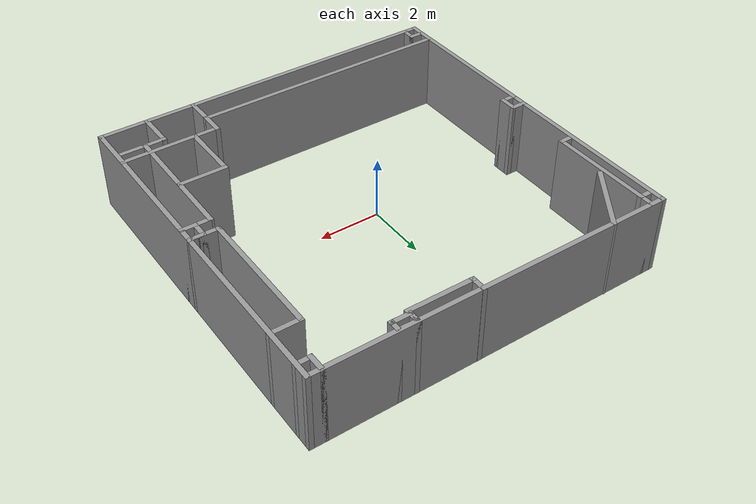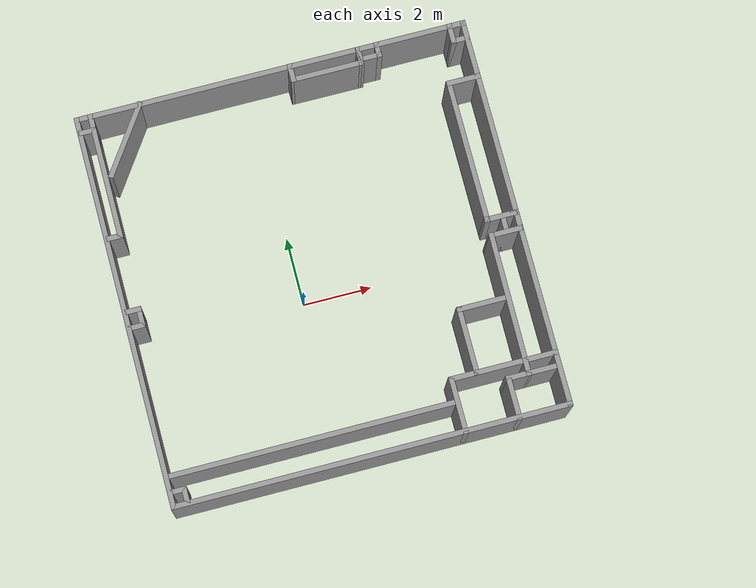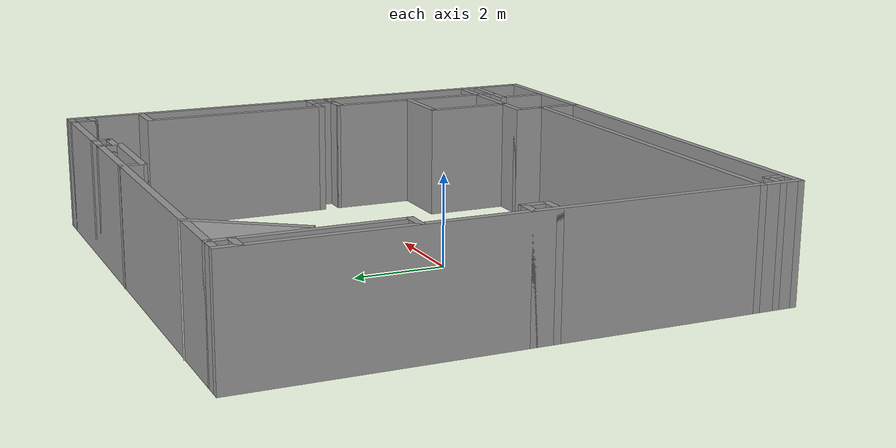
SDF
<?xml version='1.0'?>
<sdf version='1.6'>
  <model name='B205_except_table_'>
    <pose frame=''>0.68 0.689697 0 0 -0 0</pose>
    <link name='Wall_102'>
      <collision name='Wall_102_Collision'>
        <geometry>
          <box>
            <size>0.55 0.15 2.5</size>
          </box>
        </geometry>
        <pose frame=''>0 0 1.25 0 -0 0</pose>
      </collision>
      <visual name='Wall_102_Visual'>
        <pose frame=''>0 0 1.25 0 -0 0</pose>
        <geometry>
          <box>
            <size>0.55 0.15 2.5</size>
          </box>
        </geometry>
        <material>
          <script>
            <uri>file://media/materials/scripts/gazebo.material</uri>
            <name>Gazebo/Grey</name>
          </script>
          <ambient>1 1 1 1</ambient>
        </material>
      </visual>
      <pose frame=''>2.57 5.4603 0 0 0 -1.5708</pose>
    </link>
    <link name='Wall_104'>
      <collision name='Wall_104_Collision'>
        <geometry>
          <box>
            <size>2.15001 0.15 2.5</size>
          </box>
        </geometry>
        <pose frame=''>0 0 1.25 0 -0 0</pose>
      </collision>
      <visual name='Wall_104_Visual'>
        <pose frame=''>0 0 1.25 0 -0 0</pose>
        <geometry>
          <box>
            <size>2.15001 0.15 2.5</size>
          </box>
        </geometry>
        <material>
          <script>
            <uri>file://media/materials/scripts/gazebo.material</uri>
            <name>Gazebo/Grey</name>
          </script>
          <ambient>1 1 1 1</ambient>
        </material>
      </visual>
      <pose frame=''>1.57 5.2633 0 0 -0 3.13859</pose>
    </link>
    <link name='Wall_108'>
      <collision name='Wall_108_Collision'>
        <geometry>
          <box>
            <size>0.55 0.15 2.5</size>
          </box>
        </geometry>
        <pose frame=''>0 0 1.25 0 -0 0</pose>
      </collision>
      <visual name='Wall_108_Visual'>
        <pose frame=''>0 0 1.25 0 -0 0</pose>
        <geometry>
          <box>
            <size>0.55 0.15 2.5</size>
          </box>
        </geometry>
        <material>
          <script>
            <uri>file://media/materials/scripts/gazebo.material</uri>
            <name>Gazebo/Grey</name>
          </script>
          <ambient>1 1 1 1</ambient>
        </material>
      </visual>
      <pose frame=''>-5.48 2.0953 0 0 -0 0</pose>
    </link>
    <link name='Wall_110'>
      <collision name='Wall_110_Collision'>
        <geometry>
          <box>
            <size>3.315 0.15 2.5</size>
          </box>
        </geometry>
        <pose frame=''>0 0 1.25 0 -0 0</pose>
      </collision>
      <visual name='Wall_110_Visual'>
        <pose frame=''>0 0 1.25 0 -0 0</pose>
        <geometry>
          <box>
            <size>3.315 0.15 2.5</size>
          </box>
        </geometry>
        <material>
          <script>
            <uri>file://media/materials/scripts/gazebo.material</uri>
            <name>Gazebo/Grey</name>
          </script>
          <ambient>1 1 1 1</ambient>
        </material>
      </visual>
      <pose frame=''>-5.28 3.6778 0 0 -0 1.5708</pose>
    </link>
    <link name='Wall_112'>
      <collision name='Wall_112_Collision'>
        <geometry>
          <box>
            <size>2.34842 0.15 2.5</size>
          </box>
        </geometry>
        <pose frame=''>0 0 1.25 0 -0 0</pose>
      </collision>
      <visual name='Wall_112_Visual'>
        <pose frame=''>0 0 1.25 0 -0 0</pose>
        <geometry>
          <box>
            <size>2.34842 0.15 2.5</size>
          </box>
        </geometry>
        <material>
          <script>
            <uri>file://media/materials/scripts/gazebo.material</uri>
            <name>Gazebo/Grey</name>
          </script>
          <ambient>1 1 1 1</ambient>
        </material>
      </visual>
      <pose frame=''>-4.4775 4.7578 0 0 -0 0.963238</pose>
    </link>
    <link name='Wall_27'>
      <collision name='Wall_27_Collision'>
        <geometry>
          <box>
            <size>11.51 0.15 2.5</size>
          </box>
        </geometry>
        <pose frame=''>0 0 1.25 0 -0 0</pose>
      </collision>
      <visual name='Wall_27_Visual'>
        <pose frame=''>0 0 1.25 0 -0 0</pose>
        <geometry>
          <box>
            <size>11.51 0.15 2.5</size>
          </box>
        </geometry>
        <material>
          <script>
            <uri>file://media/materials/scripts/gazebo.material</uri>
            <name>Gazebo/Grey</name>
          </script>
          <ambient>1 1 1 1</ambient>
        </material>
      </visual>
      <pose frame=''>0 -5.6897 0 0 -0 0</pose>
    </link>
    <link name='Wall_29'>
      <collision name='Wall_29_Collision'>
        <geometry>
          <box>
            <size>11.5 0.15 2.5</size>
          </box>
        </geometry>
        <pose frame=''>0 0 1.25 0 -0 0</pose>
      </collision>
      <visual name='Wall_29_Visual'>
        <pose frame=''>0 0 1.25 0 -0 0</pose>
        <geometry>
          <box>
            <size>11.5 0.15 2.5</size>
          </box>
        </geometry>
        <material>
          <script>
            <uri>file://media/materials/scripts/gazebo.material</uri>
            <name>Gazebo/Grey</name>
          </script>
          <ambient>1 1 1 1</ambient>
        </material>
      </visual>
      <pose frame=''>-5.68 -0.014697 0 0 -0 1.5708</pose>
    </link>
    <link name='Wall_31'>
      <collision name='Wall_31_Collision'>
        <geometry>
          <box>
            <size>11.5 0.15 2.5</size>
          </box>
        </geometry>
        <pose frame=''>0 0 1.25 0 -0 0</pose>
      </collision>
      <visual name='Wall_31_Visual'>
        <pose frame=''>0 0 1.25 0 -0 0</pose>
        <geometry>
          <box>
            <size>11.5 0.15 2.5</size>
          </box>
        </geometry>
        <material>
          <script>
            <uri>file://media/materials/scripts/gazebo.material</uri>
            <name>Gazebo/Grey</name>
          </script>
          <ambient>1 1 1 1</ambient>
        </material>
      </visual>
      <pose frame=''>5.68 -0.014697 0 0 -0 1.5708</pose>
    </link>
    <link name='Wall_33'>
      <collision name='Wall_33_Collision'>
        <geometry>
          <box>
            <size>11.51 0.15 2.5</size>
          </box>
        </geometry>
        <pose frame=''>0 0 1.25 0 -0 0</pose>
      </collision>
      <visual name='Wall_33_Visual'>
        <pose frame=''>0 0 1.25 0 -0 0</pose>
        <geometry>
          <box>
            <size>11.51 0.15 2.5</size>
          </box>
        </geometry>
        <material>
          <script>
            <uri>file://media/materials/scripts/gazebo.material</uri>
            <name>Gazebo/Grey</name>
          </script>
          <ambient>1 1 1 1</ambient>
        </material>
      </visual>
      <pose frame=''>0 5.6603 0 0 -0 0</pose>
    </link>
    <link name='Wall_39'>
      <collision name='Wall_39_Collision'>
        <geometry>
          <box>
            <size>0.555 0.15 2.5</size>
          </box>
        </geometry>
        <pose frame=''>0 0 1.25 0 -0 0</pose>
      </collision>
      <visual name='Wall_39_Visual'>
        <pose frame=''>0 0 1.25 0 -0 0</pose>
        <geometry>
          <box>
            <size>0.555 0.15 2.5</size>
          </box>
        </geometry>
        <material>
          <script>
            <uri>file://media/materials/scripts/gazebo.material</uri>
            <name>Gazebo/Grey</name>
          </script>
          <ambient>1 1 1 1</ambient>
        </material>
      </visual>
      <pose frame=''>-5.275 -5.4872 0 0 -0 1.5708</pose>
    </link>
    <link name='Wall_41'>
      <collision name='Wall_41_Collision'>
        <geometry>
          <box>
            <size>0.555 0.15 2.5</size>
          </box>
        </geometry>
        <pose frame=''>0 0 1.25 0 -0 0</pose>
      </collision>
      <visual name='Wall_41_Visual'>
        <pose frame=''>0 0 1.25 0 -0 0</pose>
        <geometry>
          <box>
            <size>0.555 0.15 2.5</size>
          </box>
        </geometry>
        <material>
          <script>
            <uri>file://media/materials/scripts/gazebo.material</uri>
            <name>Gazebo/Grey</name>
          </script>
          <ambient>1 1 1 1</ambient>
        </material>
      </visual>
      <pose frame=''>-5.4775 -5.2847 0 0 -0 3.14159</pose>
    </link>
    <link name='Wall_43'>
      <collision name='Wall_43_Collision'>
        <geometry>
          <box>
            <size>0.55 0.15 2.5</size>
          </box>
        </geometry>
        <pose frame=''>0 0 1.25 0 -0 0</pose>
      </collision>
      <visual name='Wall_43_Visual'>
        <pose frame=''>0 0 1.25 0 -0 0</pose>
        <geometry>
          <box>
            <size>0.55 0.15 2.5</size>
          </box>
        </geometry>
        <material>
          <script>
            <uri>file://media/materials/scripts/gazebo.material</uri>
            <name>Gazebo/Grey</name>
          </script>
          <ambient>1 1 1 1</ambient>
        </material>
      </visual>
      <pose frame=''>-5.48 -0.539697 0 0 -0 0</pose>
    </link>
    <link name='Wall_45'>
      <collision name='Wall_45_Collision'>
        <geometry>
          <box>
            <size>0.62 0.15 2.5</size>
          </box>
        </geometry>
        <pose frame=''>0 0 1.25 0 -0 0</pose>
      </collision>
      <visual name='Wall_45_Visual'>
        <pose frame=''>0 0 1.25 0 -0 0</pose>
        <geometry>
          <box>
            <size>0.62 0.15 2.5</size>
          </box>
        </geometry>
        <material>
          <script>
            <uri>file://media/materials/scripts/gazebo.material</uri>
            <name>Gazebo/Grey</name>
          </script>
          <ambient>1 1 1 1</ambient>
        </material>
      </visual>
      <pose frame=''>-5.28 -0.304697 0 0 -0 1.5708</pose>
    </link>
    <link name='Wall_47'>
      <collision name='Wall_47_Collision'>
        <geometry>
          <box>
            <size>0.55 0.15 2.5</size>
          </box>
        </geometry>
        <pose frame=''>0 0 1.25 0 -0 0</pose>
      </collision>
      <visual name='Wall_47_Visual'>
        <pose frame=''>0 0 1.25 0 -0 0</pose>
        <geometry>
          <box>
            <size>0.55 0.15 2.5</size>
          </box>
        </geometry>
        <material>
          <script>
            <uri>file://media/materials/scripts/gazebo.material</uri>
            <name>Gazebo/Grey</name>
          </script>
          <ambient>1 1 1 1</ambient>
        </material>
      </visual>
      <pose frame=''>-5.48 -0.069697 0 0 -0 3.14159</pose>
    </link>
    <link name='Wall_49'>
      <collision name='Wall_49_Collision'>
        <geometry>
          <box>
            <size>0.55 0.15 2.5</size>
          </box>
        </geometry>
        <pose frame=''>0 0 1.25 0 -0 0</pose>
      </collision>
      <visual name='Wall_49_Visual'>
        <pose frame=''>0 0 1.25 0 -0 0</pose>
        <geometry>
          <box>
            <size>0.55 0.15 2.5</size>
          </box>
        </geometry>
        <material>
          <script>
            <uri>file://media/materials/scripts/gazebo.material</uri>
            <name>Gazebo/Grey</name>
          </script>
          <ambient>1 1 1 1</ambient>
        </material>
      </visual>
      <pose frame=''>-5.48 5.2603 0 0 -0 0</pose>
    </link>
    <link name='Wall_51'>
      <collision name='Wall_51_Collision'>
        <geometry>
          <box>
            <size>0.55 0.15 2.5</size>
          </box>
        </geometry>
        <pose frame=''>0 0 1.25 0 -0 0</pose>
      </collision>
      <visual name='Wall_51_Visual'>
        <pose frame=''>0 0 1.25 0 -0 0</pose>
        <geometry>
          <box>
            <size>0.55 0.15 2.5</size>
          </box>
        </geometry>
        <material>
          <script>
            <uri>file://media/materials/scripts/gazebo.material</uri>
            <name>Gazebo/Grey</name>
          </script>
          <ambient>1 1 1 1</ambient>
        </material>
      </visual>
      <pose frame=''>-5.28 5.4603 0 0 -0 1.5708</pose>
    </link>
    <link name='Wall_53'>
      <collision name='Wall_53_Collision'>
        <geometry>
          <box>
            <size>1.465 0.15 2.5</size>
          </box>
        </geometry>
        <pose frame=''>0 0 1.25 0 -0 0</pose>
      </collision>
      <visual name='Wall_53_Visual'>
        <pose frame=''>0 0 1.25 0 -0 0</pose>
        <geometry>
          <box>
            <size>1.465 0.15 2.5</size>
          </box>
        </geometry>
        <material>
          <script>
            <uri>file://media/materials/scripts/gazebo.material</uri>
            <name>Gazebo/Grey</name>
          </script>
          <ambient>1 1 1 1</ambient>
        </material>
      </visual>
      <pose frame=''>4.8725 -4.5647 0 0 -0 0</pose>
    </link>
    <link name='Wall_55'>
      <collision name='Wall_55_Collision'>
        <geometry>
          <box>
            <size>1.275 0.15 2.5</size>
          </box>
        </geometry>
        <pose frame=''>0 0 1.25 0 -0 0</pose>
      </collision>
      <visual name='Wall_55_Visual'>
        <pose frame=''>0 0 1.25 0 -0 0</pose>
        <geometry>
          <box>
            <size>1.275 0.15 2.5</size>
          </box>
        </geometry>
        <material>
          <script>
            <uri>file://media/materials/scripts/gazebo.material</uri>
            <name>Gazebo/Grey</name>
          </script>
          <ambient>1 1 1 1</ambient>
        </material>
      </visual>
      <pose frame=''>4.215 -5.1272 0 0 0 -1.5708</pose>
    </link>
    <link name='Wall_57'>
      <collision name='Wall_57_Collision'>
        <geometry>
          <box>
            <size>0.55 0.15 2.5</size>
          </box>
        </geometry>
        <pose frame=''>0 0 1.25 0 -0 0</pose>
      </collision>
      <visual name='Wall_57_Visual'>
        <pose frame=''>0 0 1.25 0 -0 0</pose>
        <geometry>
          <box>
            <size>0.55 0.15 2.5</size>
          </box>
        </geometry>
        <material>
          <script>
            <uri>file://media/materials/scripts/gazebo.material</uri>
            <name>Gazebo/Grey</name>
          </script>
          <ambient>1 1 1 1</ambient>
        </material>
      </visual>
      <pose frame=''>5.48 -0.529697 0 0 -0 0</pose>
    </link>
    <link name='Wall_59'>
      <collision name='Wall_59_Collision'>
        <geometry>
          <box>
            <size>0.62 0.15 2.5</size>
          </box>
        </geometry>
        <pose frame=''>0 0 1.25 0 -0 0</pose>
      </collision>
      <visual name='Wall_59_Visual'>
        <pose frame=''>0 0 1.25 0 -0 0</pose>
        <geometry>
          <box>
            <size>0.62 0.15 2.5</size>
          </box>
        </geometry>
        <material>
          <script>
            <uri>file://media/materials/scripts/gazebo.material</uri>
            <name>Gazebo/Grey</name>
          </script>
          <ambient>1 1 1 1</ambient>
        </material>
      </visual>
      <pose frame=''>5.28 -0.294697 0 0 -0 1.5708</pose>
    </link>
    <link name='Wall_61'>
      <collision name='Wall_61_Collision'>
        <geometry>
          <box>
            <size>0.55 0.15 2.5</size>
          </box>
        </geometry>
        <pose frame=''>0 0 1.25 0 -0 0</pose>
      </collision>
      <visual name='Wall_61_Visual'>
        <pose frame=''>0 0 1.25 0 -0 0</pose>
        <geometry>
          <box>
            <size>0.55 0.15 2.5</size>
          </box>
        </geometry>
        <material>
          <script>
            <uri>file://media/materials/scripts/gazebo.material</uri>
            <name>Gazebo/Grey</name>
          </script>
          <ambient>1 1 1 1</ambient>
        </material>
      </visual>
      <pose frame=''>5.48 -0.059697 0 0 -0 0</pose>
    </link>
    <link name='Wall_63'>
      <collision name='Wall_63_Collision'>
        <geometry>
          <box>
            <size>0.55 0.15 2.5</size>
          </box>
        </geometry>
        <pose frame=''>0 0 1.25 0 -0 0</pose>
      </collision>
      <visual name='Wall_63_Visual'>
        <pose frame=''>0 0 1.25 0 -0 0</pose>
        <geometry>
          <box>
            <size>0.55 0.15 2.5</size>
          </box>
        </geometry>
        <material>
          <script>
            <uri>file://media/materials/scripts/gazebo.material</uri>
            <name>Gazebo/Grey</name>
          </script>
          <ambient>1 1 1 1</ambient>
        </material>
      </visual>
      <pose frame=''>5.48 5.2153 0 0 -0 0</pose>
    </link>
    <link name='Wall_66'>
      <collision name='Wall_66_Collision'>
        <geometry>
          <box>
            <size>0.595 0.15 2.5</size>
          </box>
        </geometry>
        <pose frame=''>0 0 1.25 0 -0 0</pose>
      </collision>
      <visual name='Wall_66_Visual'>
        <pose frame=''>0 0 1.25 0 -0 0</pose>
        <geometry>
          <box>
            <size>0.595 0.15 2.5</size>
          </box>
        </geometry>
        <material>
          <script>
            <uri>file://media/materials/scripts/gazebo.material</uri>
            <name>Gazebo/Grey</name>
          </script>
          <ambient>1 1 1 1</ambient>
        </material>
      </visual>
      <pose frame=''>5.28 5.4378 0 0 -0 1.5708</pose>
    </link>
    <link name='Wall_68'>
      <collision name='Wall_68_Collision'>
        <geometry>
          <box>
            <size>8.5 0.15 2.5</size>
          </box>
        </geometry>
        <pose frame=''>0 0 1.25 0 -0 0</pose>
      </collision>
      <visual name='Wall_68_Visual'>
        <pose frame=''>0 0 1.25 0 -0 0</pose>
        <geometry>
          <box>
            <size>8.5 0.15 2.5</size>
          </box>
        </geometry>
        <material>
          <script>
            <uri>file://media/materials/scripts/gazebo.material</uri>
            <name>Gazebo/Grey</name>
          </script>
          <ambient>1 1 1 1</ambient>
        </material>
      </visual>
      <pose frame=''>-1.505 -4.8397 0 0 -0 0</pose>
    </link>
    <link name='Wall_72'>
      <collision name='Wall_72_Collision'>
        <geometry>
          <box>
            <size>1.65 0.15 2.5</size>
          </box>
        </geometry>
        <pose frame=''>0 0 1.25 0 -0 0</pose>
      </collision>
      <visual name='Wall_72_Visual'>
        <pose frame=''>0 0 1.25 0 -0 0</pose>
        <geometry>
          <box>
            <size>1.65 0.15 2.5</size>
          </box>
        </geometry>
        <material>
          <script>
            <uri>file://media/materials/scripts/gazebo.material</uri>
            <name>Gazebo/Grey</name>
          </script>
          <ambient>1 1 1 1</ambient>
        </material>
      </visual>
      <pose frame=''>2.67 -4.9397 0 0 -0 1.5708</pose>
    </link>
    <link name='Wall_74'>
      <collision name='Wall_74_Collision'>
        <geometry>
          <box>
            <size>3.16 0.15 2.5</size>
          </box>
        </geometry>
        <pose frame=''>0 0 1.25 0 -0 0</pose>
      </collision>
      <visual name='Wall_74_Visual'>
        <pose frame=''>0 0 1.25 0 -0 0</pose>
        <geometry>
          <box>
            <size>3.16 0.15 2.5</size>
          </box>
        </geometry>
        <material>
          <script>
            <uri>file://media/materials/scripts/gazebo.material</uri>
            <name>Gazebo/Grey</name>
          </script>
          <ambient>1 1 1 1</ambient>
        </material>
      </visual>
      <pose frame=''>4.175 -4.1897 0 0 -0 0</pose>
    </link>
    <link name='Wall_76'>
      <collision name='Wall_76_Collision'>
        <geometry>
          <box>
            <size>1.987 0.15 2.5</size>
          </box>
        </geometry>
        <pose frame=''>0 0 1.25 0 -0 0</pose>
      </collision>
      <visual name='Wall_76_Visual'>
        <pose frame=''>0 0 1.25 0 -0 0</pose>
        <geometry>
          <box>
            <size>1.987 0.15 2.5</size>
          </box>
        </geometry>
        <material>
          <script>
            <uri>file://media/materials/scripts/gazebo.material</uri>
            <name>Gazebo/Grey</name>
          </script>
          <ambient>1 1 1 1</ambient>
        </material>
      </visual>
      <pose frame=''>3.4 -3.2582 0 0 -0 1.5708</pose>
    </link>
    <link name='Wall_78'>
      <collision name='Wall_78_Collision'>
        <geometry>
          <box>
            <size>4.185 0.15 2.5</size>
          </box>
        </geometry>
        <pose frame=''>0 0 1.25 0 -0 0</pose>
      </collision>
      <visual name='Wall_78_Visual'>
        <pose frame=''>0 0 1.25 0 -0 0</pose>
        <geometry>
          <box>
            <size>4.185 0.15 2.5</size>
          </box>
        </geometry>
        <material>
          <script>
            <uri>file://media/materials/scripts/gazebo.material</uri>
            <name>Gazebo/Grey</name>
          </script>
          <ambient>1 1 1 1</ambient>
        </material>
      </visual>
      <pose frame=''>4.815 -2.5472 0 0 -0 1.56336</pose>
    </link>
    <link name='Wall_80'>
      <collision name='Wall_80_Collision'>
        <geometry>
          <box>
            <size>1 0.15 2.5</size>
          </box>
        </geometry>
        <pose frame=''>0 0 1.25 0 -0 0</pose>
      </collision>
      <visual name='Wall_80_Visual'>
        <pose frame=''>0 0 1.25 0 -0 0</pose>
        <geometry>
          <box>
            <size>1 0.15 2.5</size>
          </box>
        </geometry>
        <material>
          <script>
            <uri>file://media/materials/scripts/gazebo.material</uri>
            <name>Gazebo/Grey</name>
          </script>
          <ambient>1 1 1 1</ambient>
        </material>
      </visual>
      <pose frame=''>5.255 -0.529697 0 0 -0 3.14159</pose>
    </link>
    <link name='Wall_82'>
      <collision name='Wall_82_Collision'>
        <geometry>
          <box>
            <size>1.55 0.15 2.5</size>
          </box>
        </geometry>
        <pose frame=''>0 0 1.25 0 -0 0</pose>
      </collision>
      <visual name='Wall_82_Visual'>
        <pose frame=''>0 0 1.25 0 -0 0</pose>
        <geometry>
          <box>
            <size>1.55 0.15 2.5</size>
          </box>
        </geometry>
        <material>
          <script>
            <uri>file://media/materials/scripts/gazebo.material</uri>
            <name>Gazebo/Grey</name>
          </script>
          <ambient>1 1 1 1</ambient>
        </material>
      </visual>
      <pose frame=''>4.1 -2.3397 0 0 -0 0</pose>
    </link>
    <link name='Wall_84'>
      <collision name='Wall_84_Collision'>
        <geometry>
          <box>
            <size>1 0.15 2.5</size>
          </box>
        </geometry>
        <pose frame=''>0 0 1.25 0 -0 0</pose>
      </collision>
      <visual name='Wall_84_Visual'>
        <pose frame=''>0 0 1.25 0 -0 0</pose>
        <geometry>
          <box>
            <size>1 0.15 2.5</size>
          </box>
        </geometry>
        <material>
          <script>
            <uri>file://media/materials/scripts/gazebo.material</uri>
            <name>Gazebo/Grey</name>
          </script>
          <ambient>1 1 1 1</ambient>
        </material>
      </visual>
      <pose frame=''>5.255 -0.059697 0 0 -0 3.14159</pose>
    </link>
    <link name='Wall_86'>
      <collision name='Wall_86_Collision'>
        <geometry>
          <box>
            <size>4.25 0.15 2.5</size>
          </box>
        </geometry>
        <pose frame=''>0 0 1.25 0 -0 0</pose>
      </collision>
      <visual name='Wall_86_Visual'>
        <pose frame=''>0 0 1.25 0 -0 0</pose>
        <geometry>
          <box>
            <size>4.25 0.15 2.5</size>
          </box>
        </geometry>
        <material>
          <script>
            <uri>file://media/materials/scripts/gazebo.material</uri>
            <name>Gazebo/Grey</name>
          </script>
          <ambient>1 1 1 1</ambient>
        </material>
      </visual>
      <pose frame=''>4.83 1.9903 0 0 -0 1.5708</pose>
    </link>
    <link name='Wall_88'>
      <collision name='Wall_88_Collision'>
        <geometry>
          <box>
            <size>1 0.15 2.5</size>
          </box>
        </geometry>
        <pose frame=''>0 0 1.25 0 -0 0</pose>
      </collision>
      <visual name='Wall_88_Visual'>
        <pose frame=''>0 0 1.25 0 -0 0</pose>
        <geometry>
          <box>
            <size>1 0.15 2.5</size>
          </box>
        </geometry>
        <material>
          <script>
            <uri>file://media/materials/scripts/gazebo.material</uri>
            <name>Gazebo/Grey</name>
          </script>
          <ambient>1 1 1 1</ambient>
        </material>
      </visual>
      <pose frame=''>5.255 4.0403 0 0 -0 0</pose>
    </link>
    <link name='Wall_90'>
      <collision name='Wall_90_Collision'>
        <geometry>
          <box>
            <size>0.45 0.15 2.5</size>
          </box>
        </geometry>
        <pose frame=''>0 0 1.25 0 -0 0</pose>
      </collision>
      <visual name='Wall_90_Visual'>
        <pose frame=''>0 0 1.25 0 -0 0</pose>
        <geometry>
          <box>
            <size>0.45 0.15 2.5</size>
          </box>
        </geometry>
        <material>
          <script>
            <uri>file://media/materials/scripts/gazebo.material</uri>
            <name>Gazebo/Grey</name>
          </script>
          <ambient>1 1 1 1</ambient>
        </material>
      </visual>
      <pose frame=''>2.57 5.5103 0 0 0 -1.5708</pose>
    </link>
    <link name='Wall_92'>
      <collision name='Wall_92_Collision'>
        <geometry>
          <box>
            <size>0.7 0.15 2.5</size>
          </box>
        </geometry>
        <pose frame=''>0 0 1.25 0 -0 0</pose>
      </collision>
      <visual name='Wall_92_Visual'>
        <pose frame=''>0 0 1.25 0 -0 0</pose>
        <geometry>
          <box>
            <size>0.7 0.15 2.5</size>
          </box>
        </geometry>
        <material>
          <script>
            <uri>file://media/materials/scripts/gazebo.material</uri>
            <name>Gazebo/Grey</name>
          </script>
          <ambient>1 1 1 1</ambient>
        </material>
      </visual>
      <pose frame=''>2.845 5.3603 0 0 -0 0</pose>
    </link>
    <link name='Wall_94'>
      <collision name='Wall_94_Collision'>
        <geometry>
          <box>
            <size>0.15 0.15 2.5</size>
          </box>
        </geometry>
        <pose frame=''>0 0 1.25 0 -0 0</pose>
      </collision>
      <visual name='Wall_94_Visual'>
        <pose frame=''>0 0 1.25 0 -0 0</pose>
        <geometry>
          <box>
            <size>0.15 0.15 2.5</size>
          </box>
        </geometry>
        <material>
          <script>
            <uri>file://media/materials/scripts/gazebo.material</uri>
            <name>Gazebo/Grey</name>
          </script>
          <ambient>1 1 1 1</ambient>
        </material>
      </visual>
      <pose frame=''>3.12 5.3603 0 0 -0 0</pose>
    </link>
    <link name='Wall_97'>
      <collision name='Wall_97_Collision'>
        <geometry>
          <box>
            <size>0.45 0.15 2.5</size>
          </box>
        </geometry>
        <pose frame=''>0 0 1.25 0 -0 0</pose>
      </collision>
      <visual name='Wall_97_Visual'>
        <pose frame=''>0 0 1.25 0 -0 0</pose>
        <geometry>
          <box>
            <size>0.45 0.15 2.5</size>
          </box>
        </geometry>
        <material>
          <script>
            <uri>file://media/materials/scripts/gazebo.material</uri>
            <name>Gazebo/Grey</name>
          </script>
          <ambient>1 1 1 1</ambient>
        </material>
      </visual>
      <pose frame=''>3.12 5.5103 0 0 -0 1.5708</pose>
    </link>
    <link name='Wall_99'>
      <collision name='Wall_99_Collision'>
        <geometry>
          <box>
            <size>0.55 0.15 2.5</size>
          </box>
        </geometry>
        <pose frame=''>0 0 1.25 0 -0 0</pose>
      </collision>
      <visual name='Wall_99_Visual'>
        <pose frame=''>0 0 1.25 0 -0 0</pose>
        <geometry>
          <box>
            <size>0.55 0.15 2.5</size>
          </box>
        </geometry>
        <material>
          <script>
            <uri>file://media/materials/scripts/gazebo.material</uri>
            <name>Gazebo/Grey</name>
          </script>
          <ambient>1 1 1 1</ambient>
        </material>
      </visual>
      <pose frame=''>0.57 5.4663 0 0 0 -1.5708</pose>
    </link>
    <static>1</static>
  </model>
</sdf>
